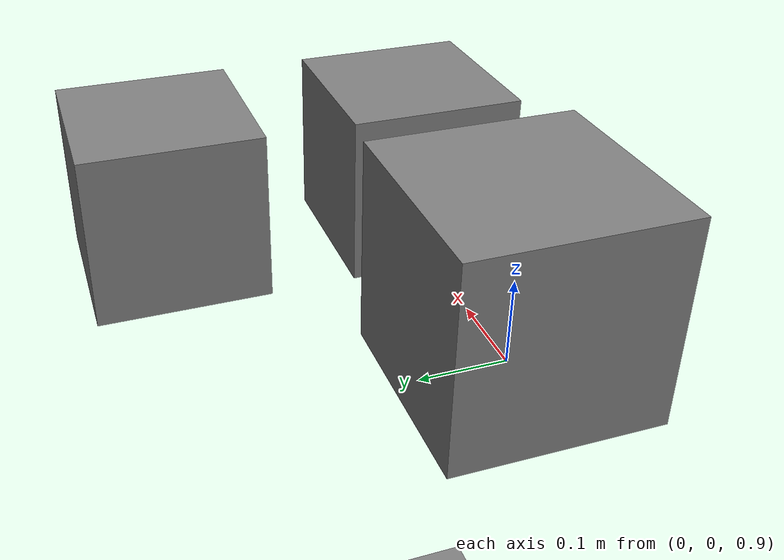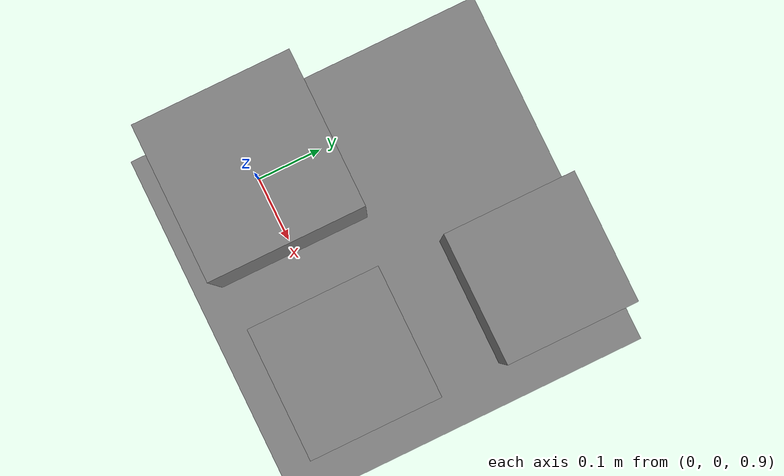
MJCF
<mujoco model="isaac_reset">
  <compiler angle="radian"/>
  <option timestep="0.002"/>
  <worldbody>
    <geom name="floor" type="plane" size="20 20 0.1"/>
    <body name="base" pos="0 0 1">
      <freejoint/>
      <geom name="base_geom" type="box" size="0.12 0.12 0.12" mass="5"/>
      <body name="leg" pos="0.3 0 0">
        <joint name="hip" type="slide" axis="1 0 0" range="-2 2"/>
        <geom name="leg_geom" type="box" size="0.1 0.1 0.1" mass="2"/>
        <body name="foot" pos="0 0.3 0">
          <joint name="knee" type="slide" axis="0 1 0" range="-2 2"/>
          <geom name="foot_geom" type="box" size="0.1 0.1 0.1" mass="3"/>
        </body>
      </body>
    </body>
  </worldbody>
  <actuator>
    <position name="hip_drive" joint="hip" kp="20" kv="2" ctrllimited="true"
              ctrlrange="-1 1" forcelimited="true" forcerange="-100 100"/>
    <position name="knee_drive" joint="knee" kp="10" kv="1" ctrllimited="true"
              ctrlrange="-1 1" forcelimited="true" forcerange="-100 100"/>
  </actuator>
  <sensor>
    <contact name="base_contact" geom1="base_geom" data="found"/>
    <contact name="foot_contact" geom1="foot_geom" data="found"/>
  </sensor>
  <keyframe><key name="init" qpos="0 0 1 1 0 0 0 0 0"/></keyframe>
</mujoco>
